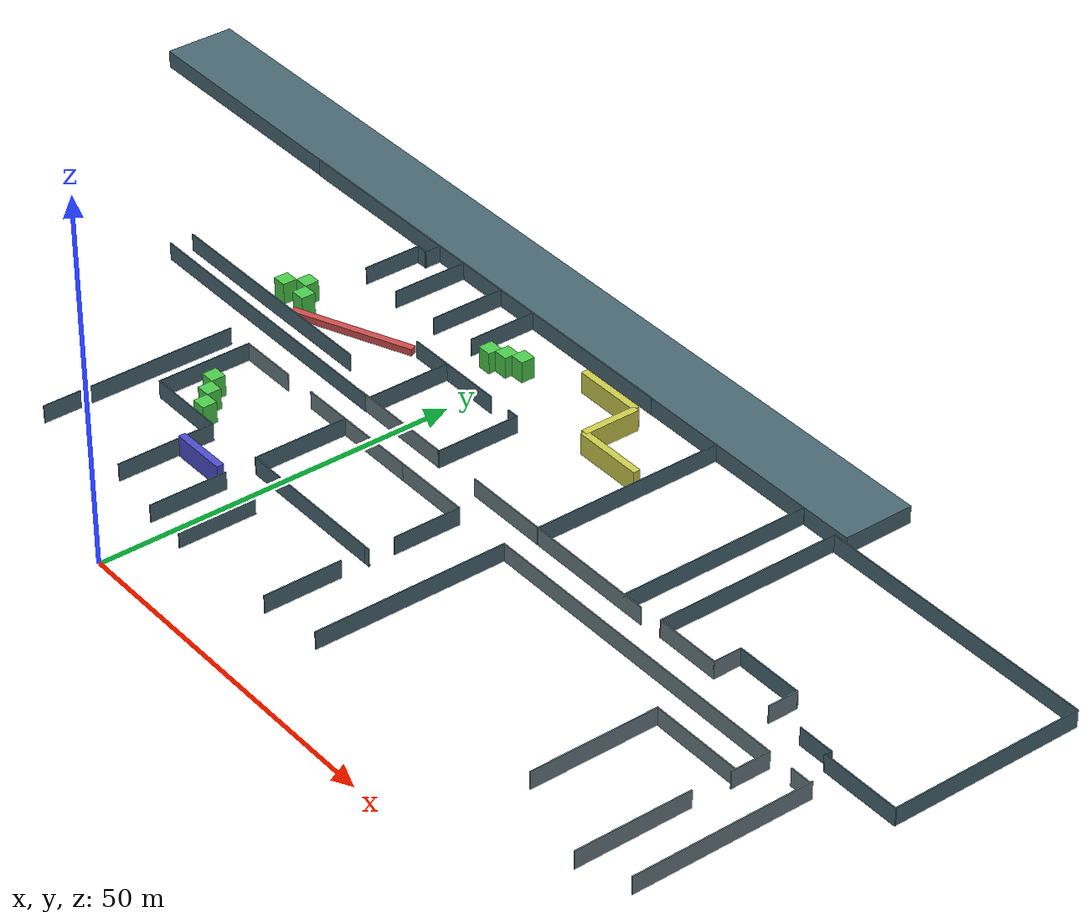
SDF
<sdf version="1.6">
 <model name="eceb_mp3">
  <pose>2.10284 -4.41124 0 0 -0 0</pose>
  <link name="Wall_103">
   <collision name="Wall_103_Collision">
    <geometry><box><size>27 0.15 2.5</size></box></geometry>
    <pose>0 0 1.25 0 -0 0</pose>
   </collision>
   <visual name="Wall_103_Visual">
    <pose>0 0 1.25 0 -0 0</pose>
    <geometry><box><size>27.25 0.15 2.5</size></box></geometry>
    <material>
     <script><uri>file://media/materials/scripts/gazebo.material</uri><name>Gazebo/Grey</name></script>
     <ambient>0.282353 0.403922 0.447059 1</ambient>
    </material>
    <meta><layer>0</layer></meta>
   </visual>
   <pose>-29.6921 28.0907 0 0 -0 -1.5708</pose>
  </link>
  <link name="Wall_107">
   <collision name="Wall_107_Collision">
    <geometry><box><size>13 0.15 2.5</size></box></geometry>
    <pose>0 0 1.25 0 -0 0</pose>
   </collision>
   <visual name="Wall_107_Visual">
    <pose>0 0 1.25 0 -0 0</pose>
    <geometry><box><size>13.25 0.15 2.5</size></box></geometry>
    <material>
     <script><uri>file://media/materials/scripts/gazebo.material</uri><name>Gazebo/Grey</name></script>
     <ambient>0.282353 0.403922 0.447059 1</ambient>
    </material>
    <meta><layer>0</layer></meta>
   </visual>
   <pose>-25.5412 35.0069 0 0 -0 -1.5708</pose>
  </link>
  <link name="Wall_108">
   <collision name="Wall_108_Collision">
    <geometry><box><size>11 0.15 2.5</size></box></geometry>
    <pose>0 0 1.25 0 -0 0</pose>
   </collision>
   <visual name="Wall_108_Visual">
    <pose>0 0 1.25 0 -0 0</pose>
    <geometry><box><size>11.5 0.15 2.5</size></box></geometry>
    <material>
     <script><uri>file://media/materials/scripts/gazebo.material</uri><name>Gazebo/Grey</name></script>
     <ambient>0.282353 0.403922 0.447059 1</ambient>
    </material>
    <meta><layer>0</layer></meta>
   </visual>
   <pose>-19.8662 28.4569 0 0 -0 0</pose>
  </link>
  <link name="Wall_109">
   <collision name="Wall_109_Collision">
    <geometry><box><size>13 0.15 2.5</size></box></geometry>
    <pose>0 0 1.25 0 -0 0</pose>
   </collision>
   <visual name="Wall_109_Visual">
    <pose>0 0 1.25 0 -0 0</pose>
    <geometry><box><size>13.5 0.15 2.5</size></box></geometry>
    <material>
     <script><uri>file://media/materials/scripts/gazebo.material</uri><name>Gazebo/Grey</name></script>
     <ambient>0.282353 0.403922 0.447059 1</ambient>
    </material>
    <meta><layer>0</layer></meta>
   </visual>
   <pose>-14.1912 21.7819 0 0 -0 -1.5708</pose>
  </link>
  <link name="Wall_112">
   <collision name="Wall_112_Collision">
    <geometry><box><size>8 0.15 2.5</size></box></geometry>
    <pose>0 0 1.25 0 -0 0</pose>
   </collision>
   <visual name="Wall_112_Visual">
    <pose>0 0 1.25 0 -0 0</pose>
    <geometry><box><size>8.5 0.15 2.5</size></box></geometry>
    <material>
     <script><uri>file://media/materials/scripts/gazebo.material</uri><name>Gazebo/Grey</name></script>
     <ambient>0.411765 0.486275 0.509804 1</ambient>
    </material>
    <meta><layer>0</layer></meta>
   </visual>
   <pose>-21.3662 41.557 0 0 -0 0</pose>
  </link>
  <link name="Wall_114">
   <collision name="Wall_114_Collision">
    <geometry><box><size>18 0.15 2.5</size></box></geometry>
    <pose>0 0 1.25 0 -0 0</pose>
   </collision>
   <visual name="Wall_114_Visual">
    <pose>0 0 1.25 0 -0 0</pose>
    <geometry><box><size>18.75 0.15 2.5</size></box></geometry>
    <material>
     <script><uri>file://media/materials/scripts/gazebo.material</uri><name>Gazebo/Grey</name></script>
     <ambient>0.411765 0.486275 0.509804 1</ambient>
    </material>
    <meta><layer>0</layer></meta>
   </visual>
   <pose>-3.06602 41.6234 0 0 -0 0</pose>
  </link>
  <link name="Wall_116">
   <collision name="Wall_116_Collision">
    <geometry><box><size>11 0.15 2.5</size></box></geometry>
    <pose>0 0 1.25 0 -0 0</pose>
   </collision>
   <visual name="Wall_116_Visual">
    <pose>0 0 1.25 0 -0 0</pose>
    <geometry><box><size>11.25 0.15 2.5</size></box></geometry>
    <material>
     <script><uri>file://media/materials/scripts/gazebo.material</uri><name>Gazebo/Grey</name></script>
     <ambient>0.411765 0.486275 0.509804 1</ambient>
    </material>
    <meta><layer>0</layer></meta>
   </visual>
   <pose>11.784 41.6234 0 0 -0 0</pose>
  </link>
  <link name="Wall_117">
   <collision name="Wall_117_Collision">
    <geometry><box><size>9 0.15 2.5</size></box></geometry>
    <pose>0 0 1.25 0 -0 0</pose>
   </collision>
   <visual name="Wall_117_Visual">
    <pose>0 0 1.25 0 -0 0</pose>
    <geometry><box><size>9.5 0.15 2.5</size></box></geometry>
    <material>
     <script><uri>file://media/materials/scripts/gazebo.material</uri><name>Gazebo/Grey</name></script>
     <ambient>0.282353 0.403922 0.447059 1</ambient>
    </material>
    <meta><layer>0</layer></meta>
   </visual>
   <pose>17.334 36.9484 0 0 -0 -1.5708</pose>
  </link>
  <link name="Wall_121">
   <collision name="Wall_121_Collision">
    <geometry><box><size>1 0.15 2.5</size></box></geometry>
    <pose>0 0 1.25 0 -0 0</pose>
   </collision>
   <visual name="Wall_121_Visual">
    <pose>0 0 1.25 0 -0 0</pose>
    <geometry><box><size>1 0.15 2.5</size></box></geometry>
    <material>
     <script><uri>file://media/materials/scripts/gazebo.material</uri><name>Gazebo/Grey</name></script>
     <ambient>0.282353 0.403922 0.447059 1</ambient>
    </material>
    <meta><layer>0</layer></meta>
   </visual>
   <pose>16.9132 28.6155 0 0 -0 3.14159</pose>
  </link>
  <link name="Wall_123">
   <collision name="Wall_123_Collision">
    <geometry><box><size>22 0.15 2.5</size></box></geometry>
    <pose>0 0 1.25 0 -0 0</pose>
   </collision>
   <visual name="Wall_123_Visual">
    <pose>0 0 1.25 0 -0 0</pose>
    <geometry><box><size>22 0.15 2.5</size></box></geometry>
    <material>
     <script><uri>file://media/materials/scripts/gazebo.material</uri><name>Gazebo/Grey</name></script>
     <ambient>0.282353 0.403922 0.447059 1</ambient>
    </material>
    <meta><layer>0</layer></meta>
   </visual>
   <pose>5.5632 28.6155 0 0 -0 3.14159</pose>
  </link>
  <link name="Wall_124">
   <collision name="Wall_124_Collision">
    <geometry><box><size>13 0.15 2.5</size></box></geometry>
    <pose>0 0 1.25 0 -0 0</pose>
   </collision>
   <visual name="Wall_124_Visual">
    <pose>0 0 1.25 0 -0 0</pose>
    <geometry><box><size>13 0.15 2.5</size></box></geometry>
    <material>
     <script><uri>file://media/materials/scripts/gazebo.material</uri><name>Gazebo/Grey</name></script>
     <ambient>0.282353 0.403922 0.447059 1</ambient>
    </material>
    <meta><layer>0</layer></meta>
   </visual>
   <pose>-5.3618 35.0405 0 0 -0 1.5708</pose>
  </link>
  <link name="Wall_126">
   <collision name="Wall_126_Collision">
    <geometry><box><size>10 0.15 2.5</size></box></geometry>
    <pose>0 0 1.25 0 -0 0</pose>
   </collision>
   <visual name="Wall_126_Visual">
    <pose>0 0 1.25 0 -0 0</pose>
    <geometry><box><size>10.75 0.15 2.5</size></box></geometry>
    <material>
     <script><uri>file://media/materials/scripts/gazebo.material</uri><name>Gazebo/Grey</name></script>
     <ambient>0.282353 0.403922 0.447059 1</ambient>
    </material>
    <meta><layer>0</layer></meta>
   </visual>
   <pose>17.1199 19.5308 0 0 -0 -1.5708</pose>
  </link>
  <link name="Wall_129">
   <collision name="Wall_129_Collision">
    <geometry><box><size>10 0.15 2.5</size></box></geometry>
    <pose>0 0 1.25 0 -0 0</pose>
   </collision>
   <visual name="Wall_129_Visual">
    <pose>0 0 1.25 0 -0 0</pose>
    <geometry><box><size>10.75 0.15 2.5</size></box></geometry>
    <material>
     <script><uri>file://media/materials/scripts/gazebo.material</uri><name>Gazebo/Grey</name></script>
     <ambient>0.282353 0.403922 0.447059 1</ambient>
    </material>
    <meta><layer>0</layer></meta>
   </visual>
   <pose>1.04463 18.6982 0 0 -0 -1.5708</pose>
  </link>
  <link name="Wall_131">
   <collision name="Wall_131_Collision">
    <geometry><box><size>10 0.15 2.5</size></box></geometry>
    <pose>0 0 1.25 0 -0 0</pose>
   </collision>
   <visual name="Wall_131_Visual">
    <pose>0 0 1.25 0 -0 0</pose>
    <geometry><box><size>10.75 0.15 2.5</size></box></geometry>
    <material>
     <script><uri>file://media/materials/scripts/gazebo.material</uri><name>Gazebo/Grey</name></script>
     <ambient>0.282353 0.403922 0.447059 1</ambient>
    </material>
    <meta><layer>0</layer></meta>
   </visual>
   <pose>-5.10917 18.8238 0 0 -0 -1.5708</pose>
  </link>
  <link name="Wall_17">
   <collision name="Wall_17_Collision">
    <geometry><box><size>42 0.15 2.5</size></box></geometry>
    <pose>0 0 1.25 0 -0 0</pose>
   </collision>
   <visual name="Wall_17_Visual">
    <pose>0 0 1.25 0 -0 0</pose>
    <geometry><box><size>42.5 0.15 2.5</size></box></geometry>
    <material>
     <script><uri>file://media/materials/scripts/gazebo.material</uri><name>Gazebo/Grey</name></script>
     <ambient>0.282353 0.403922 0.447059 1</ambient>
    </material>
    <meta><layer>0</layer></meta>
   </visual>
   <pose>-29.1237 46.5292 0 0 -0 -0.00394</pose>
  </link>
  <link name="Wall_19">
   <collision name="Wall_19_Collision">
    <geometry><box><size>15 0.15 2.5</size></box></geometry>
    <pose>0 0 1.25 0 -0 0</pose>
   </collision>
   <visual name="Wall_19_Visual">
    <pose>0 0 1.25 0 -0 0</pose>
    <geometry><box><size>15.75 0.15 2.5</size></box></geometry>
    <material>
     <script><uri>file://media/materials/scripts/gazebo.material</uri><name>Gazebo/Grey</name></script>
     <ambient>0.411765 0.486275 0.509804 1</ambient>
    </material>
    <meta><layer>0</layer></meta>
   </visual>
   <pose>-1.148732 46.5125 0 0 -0 0</pose>
  </link>
  <link name="Wall_22">
   <collision name="Wall_22_Collision">
    <geometry><box><size>31 0.15 2.5</size></box></geometry>
    <pose>0 0 1.25 0 -0 0</pose>
   </collision>
   <visual name="Wall_22_Visual">
    <pose>0 0 1.25 0 -0 0</pose>
    <geometry><box><size>31 0.15 2.5</size></box></geometry>
    <material>
     <script><uri>file://media/materials/scripts/gazebo.material</uri><name>Gazebo/Grey</name></script>
     <ambient>0.411765 0.486275 0.509804 1</ambient>
    </material>
    <meta><layer>0</layer></meta>
   </visual>
   <pose>29.4606 46.4787 0 0 -0 0</pose>
  </link>
  <link name="Wall_26">
   <collision name="Wall_26_Collision">
    <geometry><box><size>27 0.15 2.5</size></box></geometry>
    <pose>0 0 1.25 0 -0 0</pose>
   </collision>
   <visual name="Wall_26_Visual">
    <pose>0 0 1.25 0 -0 0</pose>
    <geometry><box><size>27 0.15 2.5</size></box></geometry>
    <material>
     <script><uri>file://media/materials/scripts/gazebo.material</uri><name>Gazebo/Grey</name></script>
     <ambient>0.282353 0.403922 0.447059 1</ambient>
    </material>
    <meta><layer>0</layer></meta>
   </visual>
   <pose>41.8856 59.9037 0 0 -0 1.5708</pose>
  </link>
  <link name="Wall_27">
   <collision name="Wall_27_Collision">
    <geometry><box><size>32 0.15 2.5</size></box></geometry>
    <pose>0 0 1.25 0 -0 0</pose>
   </collision>
   <visual name="Wall_27_Visual">
    <pose>0 0 1.25 0 -0 0</pose>
    <geometry><box><size>32.75 0.15 2.5</size></box></geometry>
    <material>
     <script><uri>file://media/materials/scripts/gazebo.material</uri><name>Gazebo/Grey</name></script>
     <ambient>0.282353 0.403922 0.447059 1</ambient>
    </material>
    <meta><layer>0</layer></meta>
   </visual>
   <pose>25.5856 73.3287 0 0 -0 3.14159</pose>
  </link>
  <link name="Wall_280">
   <collision name="Wall_280_Collision">
    <geometry><box><size>16 0.15 2.5</size></box></geometry>
    <pose>0 0 1.25 0 -0 0</pose>
   </collision>
   <visual name="Wall_280_Visual">
    <pose>0 0 1.25 0 -0 0</pose>
    <geometry><box><size>16 0.15 2.5</size></box></geometry>
    <material>
     <script><uri>file://media/materials/scripts/gazebo.material</uri><name>Gazebo/Grey</name></script>
     <ambient>0.411765 0.486275 0.509804 1</ambient>
    </material>
    <meta><layer>0</layer></meta>
   </visual>
   <pose>72.6542 22.9304 0 0 -0 1.5708</pose>
  </link>
  <link name="Wall_282">
   <collision name="Wall_282_Collision">
    <geometry><box><size>26 0.15 2.5</size></box></geometry>
    <pose>0 0 1.25 0 -0 0</pose>
   </collision>
   <visual name="Wall_282_Visual">
    <pose>0 0 1.25 0 -0 0</pose>
    <geometry><box><size>26.75 0.15 2.5</size></box></geometry>
    <material>
     <script><uri>file://media/materials/scripts/gazebo.material</uri><name>Gazebo/Grey</name></script>
     <ambient>0.282353 0.403922 0.447059 1</ambient>
    </material>
    <meta><layer>0</layer></meta>
   </visual>
   <pose>26.0332 28.2606 0 0 -0 -1.5708</pose>
  </link>
  <link name="Wall_284">
   <collision name="Wall_284_Collision">
    <geometry><box><size>47 0.15 2.5</size></box></geometry>
    <pose>0 0 1.25 0 -0 0</pose>
   </collision>
   <visual name="Wall_284_Visual">
    <pose>0 0 1.25 0 -0 0</pose>
    <geometry><box><size>47 0.15 2.5</size></box></geometry>
    <material>
     <script><uri>file://media/materials/scripts/gazebo.material</uri><name>Gazebo/Grey</name></script>
     <ambient>0.411765 0.486275 0.509804 1</ambient>
    </material>
    <meta><layer>0</layer></meta>
   </visual>
   <pose>49.4582 41.5606 0 0 -0 0</pose>
  </link>
  <link name="Wall_285">
   <collision name="Wall_285_Collision">
    <geometry><box><size>5 0.15 2.5</size></box></geometry>
    <pose>0 0 1.25 0 -0 0</pose>
   </collision>
   <visual name="Wall_285_Visual">
    <pose>0 0 1.25 0 -0 0</pose>
    <geometry><box><size>5.5 0.15 2.5</size></box></geometry>
    <material>
     <script><uri>file://media/materials/scripts/gazebo.material</uri><name>Gazebo/Grey</name></script>
     <ambient>0.411765 0.486275 0.509804 1</ambient>
    </material>
    <meta><layer>0</layer></meta>
   </visual>
   <pose>72.8832 38.8856 0 0 -0 -1.5708</pose>
  </link>
  <link name="Wall_287">
   <collision name="Wall_287_Collision">
    <geometry><box><size>17 0.15 2.5</size></box></geometry>
    <pose>0 0 1.25 0 -0 0</pose>
   </collision>
   <visual name="Wall_287_Visual">
    <pose>0 0 1.25 0 -0 0</pose>
    <geometry><box><size>17.75 0.15 2.5</size></box></geometry>
    <material>
     <script><uri>file://media/materials/scripts/gazebo.material</uri><name>Gazebo/Grey</name></script>
     <ambient>0.411765 0.486275 0.509804 1</ambient>
    </material>
    <meta><layer>0</layer></meta>
   </visual>
   <pose>59.724 27.9734 0 0 -0 -1.5708</pose>
  </link>
  <link name="Wall_289">
   <collision name="Wall_289_Collision">
    <geometry><box><size>13 0.15 2.5</size></box></geometry>
    <pose>0 0 1.25 0 -0 0</pose>
   </collision>
   <visual name="Wall_289_Visual">
    <pose>0 0 1.25 0 -0 0</pose>
    <geometry><box><size>13.25 0.15 2.5</size></box></geometry>
    <material>
     <script><uri>file://media/materials/scripts/gazebo.material</uri><name>Gazebo/Grey</name></script>
     <ambient>0.411765 0.486275 0.509804 1</ambient>
    </material>
    <meta><layer>0</layer></meta>
   </visual>
   <pose>66.274 36.7734 0 0 -0 0</pose>
  </link>
  <link name="Wall_29">
   <collision name="Wall_29_Collision">
    <geometry><box><size>69 0.15 2.5</size></box></geometry>
    <pose>0 0 1.25 0 -0 0</pose>
   </collision>
   <visual name="Wall_29_Visual">
    <pose>0 0 1.25 0 -0 0</pose>
    <geometry><box><size>69 0.15 2.5</size></box></geometry>
    <material>
     <script><uri>file://media/materials/scripts/gazebo.material</uri><name>Gazebo/Grey</name></script>
     <ambient>0.282353 0.403922 0.447059 1</ambient>
    </material>
    <meta><layer>0</layer></meta>
   </visual>
   <pose>-20.6165 73.2966 0 0 -0 3.14159</pose>
  </link>
  <link name="Wall_115">
   <collision name="Wall_115_Collision">
    <geometry><box><size>140 10 2.5</size></box></geometry>
    <pose>0 0 1.25 0 -0 0</pose>
   </collision>
   <visual name="Wall_115_Visual">
    <pose>0 0 1.25 0 -0 0</pose>
    <geometry><box><size>140 10 2.5</size></box></geometry>
    <material>
     <script><uri>file://media/materials/scripts/gazebo.material</uri><name>Gazebo/Grey</name></script>
     <ambient>0.282353 0.403922 0.447059 1</ambient>
    </material>
    <meta><layer>0</layer></meta>
   </visual>
   <pose>-20.6165 78.2966 0 0 -0 3.14159</pose>
  </link>
  <link name="Wall_299">
   <collision name="Wall_299_Collision">
    <geometry><box><size>24 0.15 2.5</size></box></geometry>
    <pose>0 0 1.25 0 -0 0</pose>
   </collision>
   <visual name="Wall_299_Visual">
    <pose>0 0 1.25 0 -0 0</pose>
    <geometry><box><size>24.75 0.15 2.5</size></box></geometry>
    <material>
     <script><uri>file://media/materials/scripts/gazebo.material</uri><name>Gazebo/Grey</name></script>
     <ambient>0.411765 0.486275 0.509804 1</ambient>
    </material>
    <meta><layer>0</layer></meta>
   </visual>
   <pose>79.4598 29.5908 0 0 -0 1.5708</pose>
  </link>
  <link name="Wall_301">
   <collision name="Wall_301_Collision">
    <geometry><box><size>3 0.15 2.5</size></box></geometry>
    <pose>0 0 1.25 0 -0 0</pose>
   </collision>
   <visual name="Wall_301_Visual">
    <pose>0 0 1.25 0 -0 0</pose>
    <geometry><box><size>3 0.15 2.5</size></box></geometry>
    <material>
     <script><uri>file://media/materials/scripts/gazebo.material</uri><name>Gazebo/Grey</name></script>
     <ambient>0.411765 0.486275 0.509804 1</ambient>
    </material>
    <meta><layer>0</layer></meta>
   </visual>
   <pose>77.9248 41.6096 0 0 -0 3.14159</pose>
  </link>
  <link name="Wall_45">
   <collision name="Wall_45_Collision">
    <geometry><box><size>10 0.15 2.5</size></box></geometry>
    <pose>0 0 1.25 0 -0 0</pose>
   </collision>
   <visual name="Wall_45_Visual">
    <pose>0 0 1.25 0 -0 0</pose>
    <geometry><box><size>10.5 0.15 2.5</size></box></geometry>
    <material>
     <script><uri>file://media/materials/scripts/gazebo.material</uri><name>Gazebo/Grey</name></script>
     <ambient>0.282353 0.403922 0.447059 1</ambient>
    </material>
    <meta><layer>0</layer></meta>
   </visual>
   <pose>-16 68.0437 0 0 -0 -1.5708</pose>
  </link>
  <link name="Wall_47">
   <collision name="Wall_47_Collision">
    <geometry><box><size>2 0.15 2.5</size></box></geometry>
    <pose>0 0 1.25 0 -0 0</pose>
   </collision>
   <visual name="Wall_47_Visual">
    <pose>0 0 1.25 0 -0 0</pose>
    <geometry><box><size>2.25 0.15 2.5</size></box></geometry>
    <material>
     <script><uri>file://media/materials/scripts/gazebo.material</uri><name>Gazebo/Grey</name></script>
     <ambient>0.282353 0.403922 0.447059 1</ambient>
    </material>
    <meta><layer>0</layer></meta>
   </visual>
   <pose>-28.7778 72.0954 0 0 -0 -1.5708</pose>
  </link>
  <link name="Wall_48">
   <collision name="Wall_48_Collision">
    <geometry><box><size>1 0.15 2.5</size></box></geometry>
    <pose>0 0 1.25 0 -0 0</pose>
   </collision>
   <visual name="Wall_48_Visual">
    <pose>0 0 1.25 0 -0 0</pose>
    <geometry><box><size>1.75 0.15 2.5</size></box></geometry>
    <material>
     <script><uri>file://media/materials/scripts/gazebo.material</uri><name>Gazebo/Grey</name></script>
     <ambient>0.282353 0.403922 0.447059 1</ambient>
    </material>
    <meta><layer>0</layer></meta>
   </visual>
   <pose>-29.5778 71.0455 0 0 -0 3.14159</pose>
  </link>
  <link name="Wall_49">
   <collision name="Wall_49_Collision">
    <geometry><box><size>8 0.15 2.5</size></box></geometry>
    <pose>0 0 1.25 0 -0 0</pose>
   </collision>
   <visual name="Wall_49_Visual">
    <pose>0 0 1.25 0 -0 0</pose>
    <geometry><box><size>8.25 0.15 2.5</size></box></geometry>
    <material>
     <script><uri>file://media/materials/scripts/gazebo.material</uri><name>Gazebo/Grey</name></script>
     <ambient>0.282353 0.403922 0.447059 1</ambient>
    </material>
    <meta><layer>0</layer></meta>
   </visual>
   <pose>-30.3778 66.9954 0 0 -0 -1.5708</pose>
  </link>
  <link name="Wall_51">
   <collision name="Wall_51_Collision">
    <geometry><box><size>10 0.15 2.5</size></box></geometry>
    <pose>0 0 1.25 0 -0 0</pose>
   </collision>
   <visual name="Wall_51_Visual">
    <pose>0 0 1.25 0 -0 0</pose>
    <geometry><box><size>10.75 0.15 2.5</size></box></geometry>
    <material>
     <script><uri>file://media/materials/scripts/gazebo.material</uri><name>Gazebo/Grey</name></script>
     <ambient>0.282353 0.403922 0.447059 1</ambient>
    </material>
    <meta><layer>0</layer></meta>
   </visual>
   <pose>-23.7258 67.9919 0 0 -0 -1.5708</pose>
  </link>
  <link name="Wall_53">
   <collision name="Wall_53_Collision">
    <geometry><box><size>9 0.15 2.5</size></box></geometry>
    <pose>0 0 1.25 0 -0 0</pose>
   </collision>
   <visual name="Wall_53_Visual">
    <pose>0 0 1.25 0 -0 0</pose>
    <geometry><box><size>9.75 0.15 2.5</size></box></geometry>
    <material>
     <script><uri>file://media/materials/scripts/gazebo.material</uri><name>Gazebo/Grey</name></script>
     <ambient>0.282353 0.403922 0.447059 1</ambient>
    </material>
    <meta><layer>0</layer></meta>
   </visual>
   <pose>-9.44831 68.4919 0 0 -0 -1.5708</pose>
  </link>
  <link name="Wall_57">
   <collision name="Wall_57_Collision">
    <geometry><box><size>34 0.15 2.5</size></box></geometry>
    <pose>0 0 1.25 0 -0 0</pose>
   </collision>
   <visual name="Wall_57_Visual">
    <pose>0 0 1.25 0 -0 0</pose>
    <geometry><box><size>34.5 0.15 2.5</size></box></geometry>
    <material>
     <script><uri>file://media/materials/scripts/gazebo.material</uri><name>Gazebo/Grey</name></script>
     <ambient>0.282353 0.403922 0.447059 1</ambient>
    </material>
    <meta><layer>0</layer></meta>
   </visual>
   <pose>-33.1237 50 0 0 -0 0</pose>
  </link>
  <link name="Wall_60">
   <collision name="Wall_60_Collision">
    <geometry><box><size>6 0.15 2.5</size></box></geometry>
    <pose>0 0 1.25 0 -0 0</pose>
   </collision>
   <visual name="Wall_60_Visual">
    <pose>0 0 1.25 0 -0 0</pose>
    <geometry><box><size>6.25 0.15 2.5</size></box></geometry>
    <material>
     <script><uri>file://media/materials/scripts/gazebo.material</uri><name>Gazebo/Grey</name></script>
     <ambient>0.282353 0.403922 0.447059 1</ambient>
    </material>
    <meta><layer>0</layer></meta>
   </visual>
   <pose>-10.1439 58.1781 0 0 -0 0</pose>
  </link>
  <link name="Wall_61">
   <collision name="Wall_61_Collision">
    <geometry><box><size>11 0.15 2.5</size></box></geometry>
    <pose>0 0 1.25 0 -0 0</pose>
   </collision>
   <visual name="Wall_61_Visual">
    <pose>0 0 1.25 0 -0 0</pose>
    <geometry><box><size>11.75 0.15 2.5</size></box></geometry>
    <material>
     <script><uri>file://media/materials/scripts/gazebo.material</uri><name>Gazebo/Grey</name></script>
     <ambient>0.282353 0.403922 0.447059 1</ambient>
    </material>
    <meta><layer>0</layer></meta>
   </visual>
   <pose>-7.09385 52.3781 0 0 -0 -1.5708</pose>
  </link>
  <link name="Wall_63">
   <collision name="Wall_63_Collision">
    <geometry><box><size>9 0.15 2.5</size></box></geometry>
    <pose>0 0 1.25 0 -0 0</pose>
   </collision>
   <visual name="Wall_63_Visual">
    <pose>0 0 1.25 0 -0 0</pose>
    <geometry><box><size>9 0.15 2.5</size></box></geometry>
    <material>
     <script><uri>file://media/materials/scripts/gazebo.material</uri><name>Gazebo/Grey</name></script>
     <ambient>0.282353 0.403922 0.447059 1</ambient>
    </material>
    <meta><layer>0</layer></meta>
   </visual>
   <pose>-2.66885 58.1781 0 0 -0 0</pose>
  </link>
  <link name="Wall_65">
   <collision name="Wall_65_Collision">
    <geometry><box><size>1 0.15 2.5</size></box></geometry>
    <pose>0 0 1.25 0 -0 0</pose>
   </collision>
   <visual name="Wall_65_Visual">
    <pose>0 0 1.25 0 -0 0</pose>
    <geometry><box><size>1.75 0.15 2.5</size></box></geometry>
    <material>
     <script><uri>file://media/materials/scripts/gazebo.material</uri><name>Gazebo/Grey</name></script>
     <ambient>0.282353 0.403922 0.447059 1</ambient>
    </material>
    <meta><layer>0</layer></meta>
   </visual>
   <pose>6.08817 58.136 0 0 -0 0</pose>
  </link>
  <link name="Wall_66">
   <collision name="Wall_66_Collision">
    <geometry><box><size>11 0.15 2.5</size></box></geometry>
    <pose>0 0 1.25 0 -0 0</pose>
   </collision>
   <visual name="Wall_66_Visual">
    <pose>0 0 1.25 0 -0 0</pose>
    <geometry><box><size>11.75 0.15 2.5</size></box></geometry>
    <material>
     <script><uri>file://media/materials/scripts/gazebo.material</uri><name>Gazebo/Grey</name></script>
     <ambient>0.282353 0.403922 0.447059 1</ambient>
    </material>
    <meta><layer>0</layer></meta>
   </visual>
   <pose>6.88817 52.336 0 0 -0 -1.5708</pose>
  </link>
  <link name="Wall_68">
   <collision name="Wall_68_Collision">
    <geometry><box><size>40 0.15 2.5</size></box></geometry>
    <pose>0 0 1.25 0 -0 0</pose>
   </collision>
   <visual name="Wall_68_Visual">
    <pose>0 0 1.25 0 -0 0</pose>
    <geometry><box><size>40.25 0.15 2.5</size></box></geometry>
    <material>
     <script><uri>file://media/materials/scripts/gazebo.material</uri><name>Gazebo/Grey</name></script>
     <ambient>0.282353 0.403922 0.447059 1</ambient>
    </material>
    <meta><layer>0</layer></meta>
   </visual>
   <pose>68.1014 72.61 0 0 -0 0</pose>
  </link>
  <link name="Wall_69">
   <collision name="Wall_69_Collision">
    <geometry><box><size>26 0.15 2.5</size></box></geometry>
    <pose>0 0 1.25 0 -0 0</pose>
   </collision>
   <visual name="Wall_69_Visual">
    <pose>0 0 1.25 0 -0 0</pose>
    <geometry><box><size>26.75 0.15 2.5</size></box></geometry>
    <material>
     <script><uri>file://media/materials/scripts/gazebo.material</uri><name>Gazebo/Grey</name></script>
     <ambient>0.282353 0.403922 0.447059 1</ambient>
    </material>
    <meta><layer>0</layer></meta>
   </visual>
   <pose>88.1514 59.31 0 0 -0 -1.5708</pose>
  </link>
  <link name="Wall_70">
   <collision name="Wall_70_Collision">
    <geometry><box><size>11 0.15 2.5</size></box></geometry>
    <pose>0 0 1.25 0 -0 0</pose>
   </collision>
   <visual name="Wall_70_Visual">
    <pose>0 0 1.25 0 -0 0</pose>
    <geometry><box><size>11.5 0.15 2.5</size></box></geometry>
    <material>
     <script><uri>file://media/materials/scripts/gazebo.material</uri><name>Gazebo/Grey</name></script>
     <ambient>0.282353 0.403922 0.447059 1</ambient>
    </material>
    <meta><layer>0</layer></meta>
   </visual>
   <pose>82.4764 46.01 0 0 -0 3.14159</pose>
  </link>
  <link name="Wall_71">
   <collision name="Wall_71_Collision">
    <geometry><box><size>1 0.15 2.5</size></box></geometry>
    <pose>0 0 1.25 0 -0 0</pose>
   </collision>
   <visual name="Wall_71_Visual">
    <pose>0 0 1.25 0 -0 0</pose>
    <geometry><box><size>1 0.15 2.5</size></box></geometry>
    <material>
     <script><uri>file://media/materials/scripts/gazebo.material</uri><name>Gazebo/Grey</name></script>
     <ambient>0.282353 0.403922 0.447059 1</ambient>
    </material>
    <meta><layer>0</layer></meta>
   </visual>
   <pose>76.9114 46.4205 0 0 -0 1.309</pose>
  </link>
  <link name="Wall_72">
   <collision name="Wall_72_Collision">
    <geometry><box><size>5 0.15 2.5</size></box></geometry>
    <pose>0 0 1.25 0 -0 0</pose>
   </collision>
   <visual name="Wall_72_Visual">
    <pose>0 0 1.25 0 -0 0</pose>
    <geometry><box><size>5.25 0.15 2.5</size></box></geometry>
    <material>
     <script><uri>file://media/materials/scripts/gazebo.material</uri><name>Gazebo/Grey</name></script>
     <ambient>0.282353 0.403922 0.447059 1</ambient>
    </material>
    <meta><layer>0</layer></meta>
   </visual>
   <pose>74.4714 46.8311 0 0 -0 3.14159</pose>
  </link>
  <link name="Wall_74">
   <collision name="Wall_74_Collision">
    <geometry><box><size>26 0.15 2.5</size></box></geometry>
    <pose>0 0 1.25 0 -0 0</pose>
   </collision>
   <visual name="Wall_74_Visual">
    <pose>0 0 1.25 0 -0 0</pose>
    <geometry><box><size>26 0.15 2.5</size></box></geometry>
    <material>
     <script><uri>file://media/materials/scripts/gazebo.material</uri><name>Gazebo/Grey</name></script>
     <ambient>0.282353 0.403922 0.447059 1</ambient>
    </material>
    <meta><layer>0</layer></meta>
   </visual>
   <pose>48.0514 59.685 0 0 -0 -1.5708</pose>
  </link>
  <link name="Wall_75">
   <collision name="Wall_75_Collision">
    <geometry><box><size>9 0.15 2.5</size></box></geometry>
    <pose>0 0 1.25 0 -0 0</pose>
   </collision>
   <visual name="Wall_75_Visual">
    <pose>0 0 1.25 0 -0 0</pose>
    <geometry><box><size>9.5 0.15 2.5</size></box></geometry>
    <material>
     <script><uri>file://media/materials/scripts/gazebo.material</uri><name>Gazebo/Grey</name></script>
     <ambient>0.411765 0.486275 0.509804 1</ambient>
    </material>
    <meta><layer>0</layer></meta>
   </visual>
   <pose>52.7264 46.76 0 0 -0 0</pose>
  </link>
  <link name="Wall_76">
   <collision name="Wall_76_Collision">
    <geometry><box><size>4 0.15 2.5</size></box></geometry>
    <pose>0 0 1.25 0 -0 0</pose>
   </collision>
   <visual name="Wall_76_Visual">
    <pose>0 0 1.25 0 -0 0</pose>
    <geometry><box><size>4 0.15 2.5</size></box></geometry>
    <material>
     <script><uri>file://media/materials/scripts/gazebo.material</uri><name>Gazebo/Grey</name></script>
     <ambient>0.411765 0.486275 0.509804 1</ambient>
    </material>
    <meta><layer>0</layer></meta>
   </visual>
   <pose>57.4014 48.685 0 0 -0 1.5708</pose>
  </link>
  <link name="Wall_77">
   <collision name="Wall_77_Collision">
    <geometry><box><size>9 0.15 2.5</size></box></geometry>
    <pose>0 0 1.25 0 -0 0</pose>
   </collision>
   <visual name="Wall_77_Visual">
    <pose>0 0 1.25 0 -0 0</pose>
    <geometry><box><size>9.75 0.15 2.5</size></box></geometry>
    <material>
     <script><uri>file://media/materials/scripts/gazebo.material</uri><name>Gazebo/Grey</name></script>
     <ambient>0.282353 0.403922 0.447059 1</ambient>
    </material>
    <meta><layer>0</layer></meta>
   </visual>
   <pose>62.2014 50.61 0 0 -0 0</pose>
  </link>
  <link name="Wall_78">
   <collision name="Wall_78_Collision">
    <geometry><box><size>4 0.15 2.5</size></box></geometry>
    <pose>0 0 1.25 0 -0 0</pose>
   </collision>
   <visual name="Wall_78_Visual">
    <pose>0 0 1.25 0 -0 0</pose>
    <geometry><box><size>4.25 0.15 2.5</size></box></geometry>
    <material>
     <script><uri>file://media/materials/scripts/gazebo.material</uri><name>Gazebo/Grey</name></script>
     <ambient>0.411765 0.486275 0.509804 1</ambient>
    </material>
    <meta><layer>0</layer></meta>
   </visual>
   <pose>67.0014 48.56 0 0 -0 -1.5708</pose>
  </link>
  <link name="Wall_95">
   <collision name="Wall_95_Collision">
    <geometry><box><size>27 0.15 2.5</size></box></geometry>
    <pose>0 0 1.25 0 -0 0</pose>
   </collision>
   <visual name="Wall_95_Visual">
    <pose>0 0 1.25 0 -0 0</pose>
    <geometry><box><size>27 0.15 2.5</size></box></geometry>
    <material>
     <script><uri>file://media/materials/scripts/gazebo.material</uri><name>Gazebo/Grey</name></script>
     <ambient>0.282353 0.403922 0.447059 1</ambient>
    </material>
    <meta><layer>0</layer></meta>
   </visual>
   <pose>26.033200 59.9037 0 0 -0 1.5708</pose>
  </link>
  <link name="obstacle_L_shape_part3">
   <collision name="collision"><geometry><box><size>1.0 8.0 3.0</size></box></geometry></collision>
   <visual name="visual">
    <geometry><box><size>1.0 8.0 3.0</size></box></geometry>
    <material><ambient>0.3 0.3 0.8 1.0</ambient><diffuse>0.3 0.3 0.8 1.0</diffuse></material>
   </visual>
   <pose>-10 24.0 1.5 0 0 1.578</pose>
  </link>
  <link name="obstacle_angled_wall">
   <collision name="collision"><geometry><box><size>17.5 1.0 1.0</size></box></geometry></collision>
   <visual name="visual">
    <geometry><box><size>17.5 1.0 1.0</size></box></geometry>
    <material><ambient>0.8 0.3 0.3 1.0</ambient><diffuse>0.8 0.3 0.3 1.0</diffuse></material>
   </visual>
   <pose>-21.0 54.0 1.5 0 0 0.4</pose>
  </link>
  <link name="obstacle_circle_part1">
   <collision name="collision"><geometry><box><size>2.0 2.0 3.0</size></box></geometry></collision>
   <visual name="visual">
    <geometry><box><size>2.0 2.0 3.0</size></box></geometry>
    <material><ambient>0.3 0.8 0.3 1.0</ambient><diffuse>0.3 0.8 0.3 1.0</diffuse></material>
   </visual>
   <pose>-2.0 66.0 1.5 0 0 0.0</pose>
  </link>
  <link name="obstacle_circle_part2">
   <collision name="collision"><geometry><box><size>2.0 2.0 3.0</size></box></geometry></collision>
   <visual name="visual">
    <geometry><box><size>2.0 2.0 3.0</size></box></geometry>
    <material><ambient>0.3 0.8 0.3 1.0</ambient><diffuse>0.3 0.8 0.3 1.0</diffuse></material>
   </visual>
   <pose>-4 65 1.5 0 0 0.0</pose>
  </link>
  <link name="obstacle_circle_part3">
   <collision name="collision"><geometry><box><size>2.0 2.0 3.0</size></box></geometry></collision>
   <visual name="visual">
    <geometry><box><size>2.0 2.0 3.0</size></box></geometry>
    <material><ambient>0.3 0.8 0.3 1.0</ambient><diffuse>0.3 0.8 0.3 1.0</diffuse></material>
   </visual>
   <pose>-6 64 1.5 0 0 0.0</pose>
  </link>
  <link name="obstacle_circle_part4">
   <collision name="collision"><geometry><box><size>2.0 2.0 3.0</size></box></geometry></collision>
   <visual name="visual">
    <geometry><box><size>2.0 2.0 3.0</size></box></geometry>
    <material><ambient>0.3 0.8 0.3 1.0</ambient><diffuse>0.3 0.8 0.3 1.0</diffuse></material>
   </visual>
   <pose>-32.0 55.0 1.5 0 0 0.0</pose>
  </link>
  <link name="obstacle_circle_part5">
   <collision name="collision"><geometry><box><size>2.0 2.0 3.0</size></box></geometry></collision>
   <visual name="visual">
    <geometry><box><size>2.0 2.0 3.0</size></box></geometry>
    <material><ambient>0.3 0.8 0.3 1.0</ambient><diffuse>0.3 0.8 0.3 1.0</diffuse></material>
   </visual>
   <pose>-30.0 53.0 1.5 0 0 0.0</pose>
  </link>
  <link name="obstacle_circle_part6">
   <collision name="collision"><geometry><box><size>2.0 2.0 3.0</size></box></geometry></collision>
   <visual name="visual">
    <geometry><box><size>2.0 2.0 3.0</size></box></geometry>
    <material><ambient>0.3 0.8 0.3 1.0</ambient><diffuse>0.3 0.8 0.3 1.0</diffuse></material>
   </visual>
   <pose>-34.0 53.0 1.5 0 0 0.0</pose>
  </link>
  <link name="obstacle_circle_part8">
   <collision name="collision"><geometry><box><size>2.0 2.0 3.0</size></box></geometry></collision>
   <visual name="visual">
    <geometry><box><size>2.0 2.0 3.0</size></box></geometry>
    <material><ambient>0.3 0.8 0.3 1.0</ambient><diffuse>0.3 0.8 0.3 1.0</diffuse></material>
   </visual>
   <pose>-22.0 34.0 1.5 0 0 0.0</pose>
  </link>
  <link name="obstacle_circle_part9">
   <collision name="collision"><geometry><box><size>2.0 2.0 3.0</size></box></geometry></collision>
   <visual name="visual">
    <geometry><box><size>2.0 2.0 3.0</size></box></geometry>
    <material><ambient>0.3 0.8 0.3 1.0</ambient><diffuse>0.3 0.8 0.3 1.0</diffuse></material>
   </visual>
   <pose>-20.0 32.0 1.5 0 0 0.0</pose>
  </link>
  <link name="obstacle_circle_part10">
   <collision name="collision"><geometry><box><size>2.0 2.0 3.0</size></box></geometry></collision>
   <visual name="visual">
    <geometry><box><size>2.0 2.0 3.0</size></box></geometry>
    <material><ambient>0.3 0.8 0.3 1.0</ambient><diffuse>0.3 0.8 0.3 1.0</diffuse></material>
   </visual>
   <pose>-18.0 30.0 1.5 0 0 0.0</pose>
  </link>
  <link name="obstacle_z_shape_part1">
   <collision name="collision"><geometry><box><size>10.0 1.0 3.0</size></box></geometry></collision>
   <visual name="visual">
    <geometry><box><size>10.0 1.0 3.0</size></box></geometry>
    <material><ambient>0.8 0.8 0.3 1.0</ambient><diffuse>0.8 0.8 0.3 1.0</diffuse></material>
   </visual>
   <pose>10.0 70.0 1.5 0 0 0.0</pose>
  </link>
  <link name="obstacle_z_shape_part2">
   <collision name="collision"><geometry><box><size>1.0 8.0 3.0</size></box></geometry></collision>
   <visual name="visual">
    <geometry><box><size>1.0 8.0 3.0</size></box></geometry>
    <material><ambient>0.8 0.8 0.3 1.0</ambient><diffuse>0.8 0.8 0.3 1.0</diffuse></material>
   </visual>
   <pose>15.0 66.0 1.5 0 0 0.0</pose>
  </link>
  <link name="obstacle_z_shape_part3">
   <collision name="collision"><geometry><box><size>10.0 1.0 3.0</size></box></geometry></collision>
   <visual name="visual">
    <geometry><box><size>10.0 1.0 3.0</size></box></geometry>
    <material><ambient>0.8 0.8 0.3 1.0</ambient><diffuse>0.8 0.8 0.3 1.0</diffuse></material>
   </visual>
   <pose>20.0 62.0 1.5 0 0 0.0</pose>
  </link>
  <static>1</static>
 </model>
</sdf>
